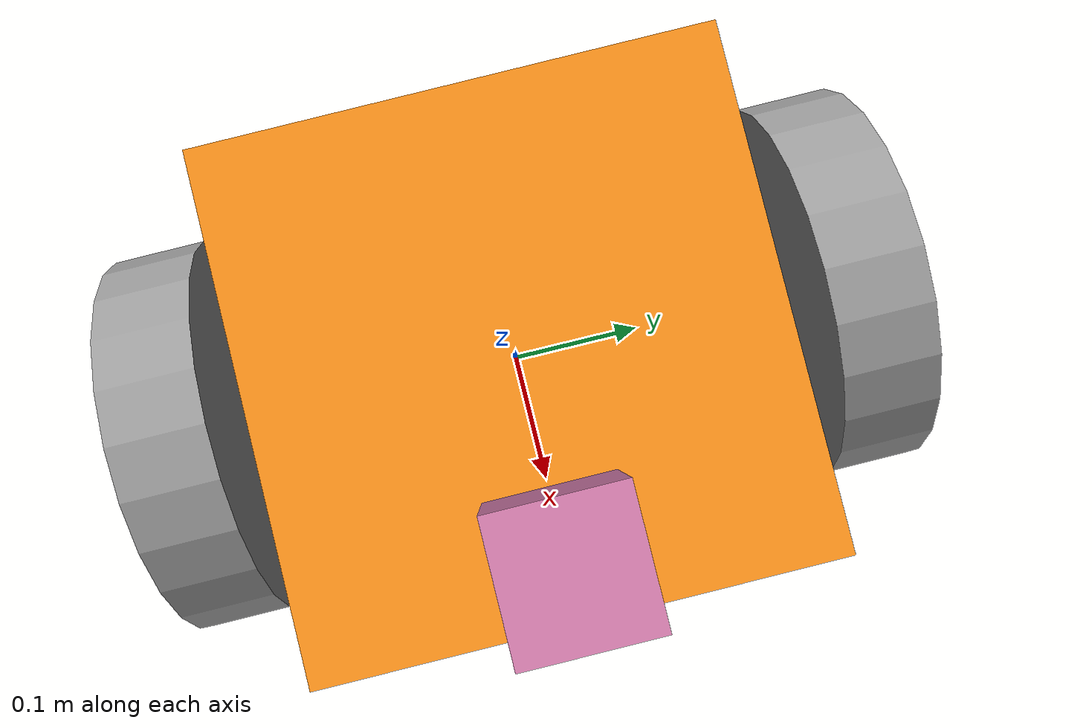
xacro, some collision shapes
<?xml version='1.0'?>

<robot name="my_robot"
    xmlns:xacro="http://www.ros.org/wiki/xacro">

    <xacro:include filename="$(find my_robot)/urdf/my_robot.gazebo"/>

    <link name="robot_footprint"></link>

    <link name="chassis">
        <pose>0 0 0.1 0 0 0</pose>

        <inertial>
            <mass value="20.0"/>
            <origin xyz="0 0 0" rpy="0 0 0"/>
            <inertia
                ixx="0.1" ixy="0" ixz="0"
                iyy="0.1" iyz="0"
                izz="0.1"
            />
        </inertial>

        <collision name="collision">
            <origin xyz="0 0 0" rpy="0 0 0"/>
            <geometry>
                <box size=".4 .4 .2"/>
            </geometry>
        </collision>

        <visual name="chassis_visual">
            <origin xyz="0 0 0" rpy="0 0 0"/>
            <geometry>
                <box size=".4 .4 .2"/>
            </geometry>
        </visual>

        <collision name="back_caster_collision">
            <origin xyz="-0.1 0 -0.075" rpy="0 0 0"/>
            <geometry>
                <sphere radius="0.0749"/>
            </geometry>
        </collision>

        <visual name="back_caster_visual">
            <origin xyz="-0.1 0 -0.075" rpy="0 0 0"/>
            <geometry>
                <sphere radius="0.075"/>
            </geometry>
        </visual>

        <collision name="front_caster_collision">
            <origin xyz="0.1 0 -0.075" rpy="0 0 0"/>
            <geometry>
                <sphere radius="0.0749"/>
            </geometry>
        </collision>

        <visual name="front_caster_visual">
            <origin xyz="0.1 0 -0.075" rpy="0 0 0"/>
            <geometry>
                <sphere radius="0.075"/>
            </geometry>
        </visual>

    </link>

    <joint  name="robot_footprint_joint" type="fixed">
        <origin xyz="0 0 0" rpy="0 0 0"/>
        <parent link="robot_footprint"/>
        <child link="chassis"/>
    </joint>

    <link name="left_wheel">
        <inertial>
            <origin xyz="0 0 0" rpy="0 1.5707 1.5707"/>
            <mass value="5"/>
            <inertia
                ixx="0.1" ixy="0" ixz="0"
                iyy="0.1" iyz="0"
                izz="0.1"
            />
        </inertial>

        <collision name="left_wheel_collision">
            <origin xyz="0 0 0" rpy="0 1.5707 1.5707"/>
            <geometry>
                <cylinder radius="0.15" length="0.07"/>
            </geometry>
        </collision>

        <visual name="left_wheel_visual">
            <origin xyz="0 0 0" rpy="0 1.5707 1.5707"/>
            <geometry>
                <cylinder radius="0.15" length="0.07"/>
            </geometry>
        </visual>
    </link>

    <link name="right_wheel">
        <inertial>
            <origin xyz="0 0 0" rpy="0 1.5707 1.5707"/>
            <mass value="5"/>
            <inertia
                ixx="0.1" ixy="0" ixz="0"
                iyy="0.1" iyz="0"
                izz="0.1"
            />
        </inertial>

        <collision name="right_wheel_collision">
            <origin xyz="0 0 0" rpy="0 1.5707 1.5707"/>
            <geometry>
                <cylinder radius="0.15" length="0.07"/>
            </geometry>
        </collision>

        <visual name="right_wheel_visual">
            <origin xyz="0 0 0" rpy="0 1.5707 1.5707"/>
            <geometry>
                <cylinder radius="0.15" length="0.07"/>
            </geometry>
        </visual>
    </link>

    <joint type="continuous" name="left_wheel_hinge">
        <origin xyz="0 0.25 0" rpy="0 0 0"/>
        <parent link="chassis"/>
        <child link="left_wheel"/>
        <axis xyz="0 1 0" rpy="0 0 0"/>
        <limit effort="10000" velocity="1000"/>
        <dynamics damping="1.0" friction="1.0"/>
    </joint>

    <joint type="continuous" name="right_wheel_hinge">
        <origin xyz="0 -0.25 0" rpy="0 0 0"/>
        <parent link="chassis"/>
        <child link="right_wheel"/>
        <axis xyz="0 1 0" rpy="0 0 0"/>
        <limit effort="10000" velocity="1000"/>
        <dynamics damping="1.0" friction="1.0"/>
    </joint>

    <link name="camera_link">
        <inertial>
            <origin xyz="0 0 0" rpy="0 0 0"/>
            <mass value="0.1"/>
            <inertia
                ixx="4e-6" ixy="0" ixz="0"
                iyy="4e-6" iyz="0"
                izz="4e-6"
            />
        </inertial>

        <collision name="camera_collision">
            <origin xyz="0 0 0" rpy="0 0 0"/>
            <geometry>
                <box size="0.05 0.05 0.05"/>
            </geometry>
        </collision>

        <visual name="camera_visual">
            <origin xyz="0 0 0" rpy="0 0 0"/>
            <geometry>
                <box size="0.05 0.05 0.05"/>
            </geometry>
        </visual>
    </link>

    <joint type="fixed" name="camera_joint">
        <origin xyz="0.2 0 0.05" rpy="0 0 0"/>
        <parent link="chassis"/>
        <child link="camera_link"/>
    </joint>

    <link name="camera_link_optical">
    </link>

    <joint name="camera_optical_joint" type="fixed">
        <origin xyz="0 0 0" rpy="-1.5707 0 -1.5707"/>
        <parent link="camera_link"/>
        <child link="camera_link_optical"/>
    </joint>

    <link name="hokuyo">
        <inertial>
            <origin xyz="0 0 0" rpy="0 0 0"/>
            <mass value="1e-5"/>
            <inertia
                ixx="1e-6" ixy="0" ixz="0"
                iyy="1e-6" iyz="0"
                izz="1e-6"
            />
        </inertial>

        <collision name="hokuyo_collision">
            <origin xyz="0 0 0" rpy="0 0 0"/>
            <geometry>
                <box size="0.1 0.1 0.1"/>
            </geometry>
        </collision>

        <visual name="hokuyo_visual">
            <origin xyz="0 0 0" rpy="0 0 0"/>
            <geometry>
                <mesh filename="$(find my_robot)/meshes/hokuyo.dae"/>
            </geometry>
        </visual>
    </link>

    <joint type="fixed" name="hokuyo_joint">
        <origin xyz="0.15 0 0.15" rpy="0 0 0"/>
        <axis xyz="0 1 0" rpy="0 0 0"/>
        <parent link="chassis"/>
        <child link="hokuyo"/>
    </joint>

    <gazebo reference="left_wheel">
        <material>Gazebo/Grey</material>
    </gazebo>

    <gazebo reference="right_wheel">
        <material>Gazebo/Grey</material>
    </gazebo>

    <gazebo reference="chassis">
        <material>Gazebo/Orange</material>
    </gazebo>

    <gazebo reference="camera_link">
        <material>Gazebo/Red</material>
    </gazebo>

</robot>
